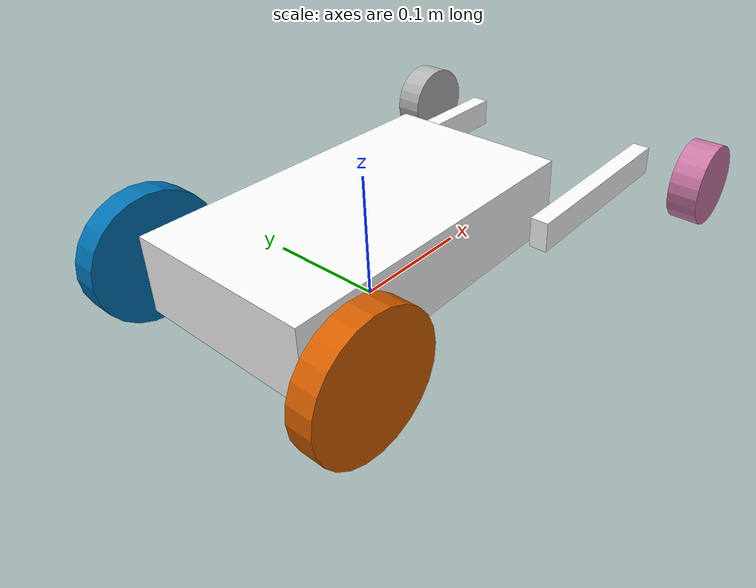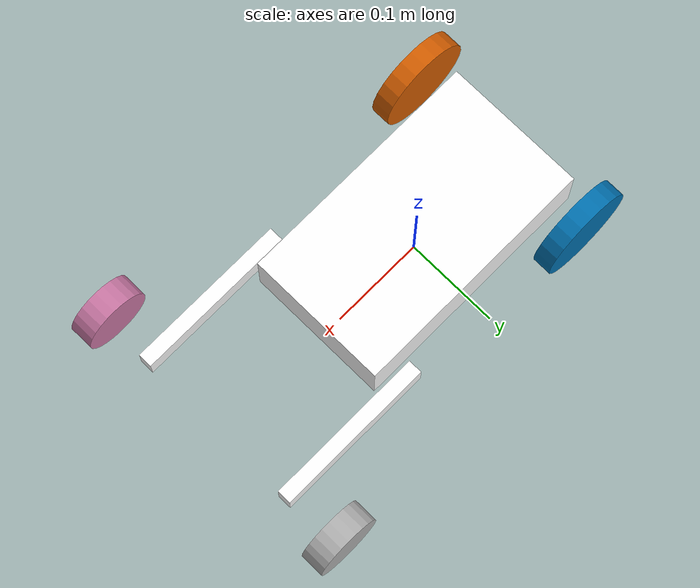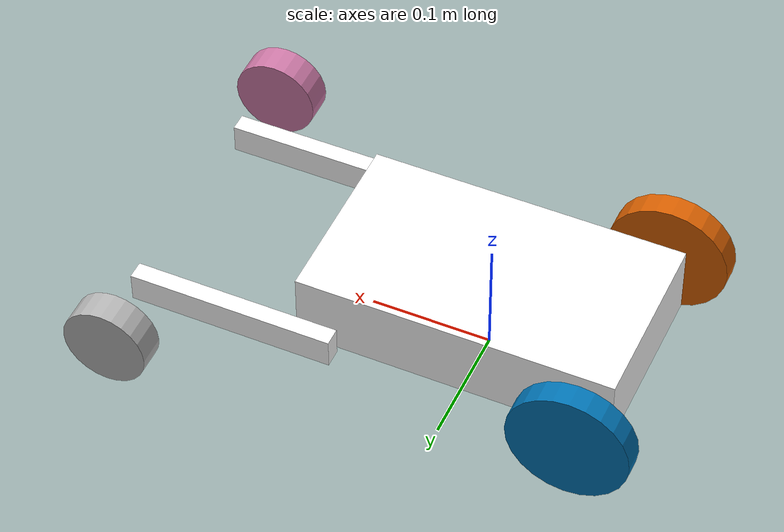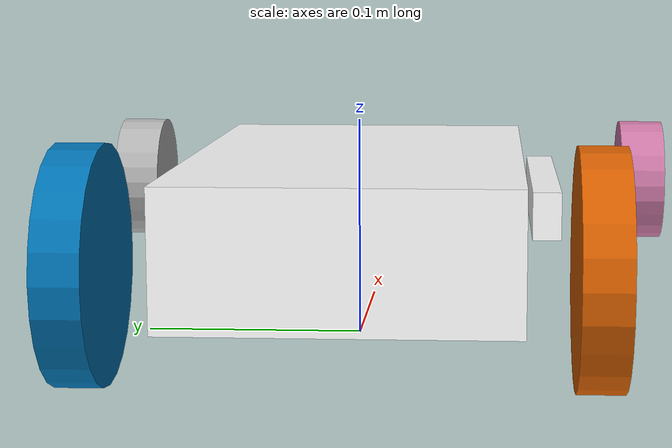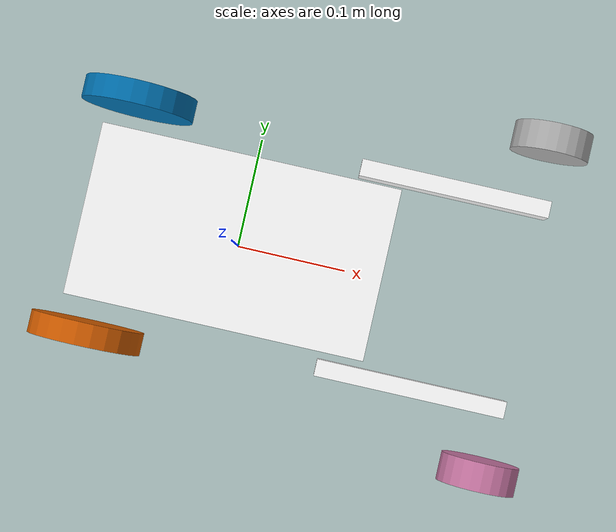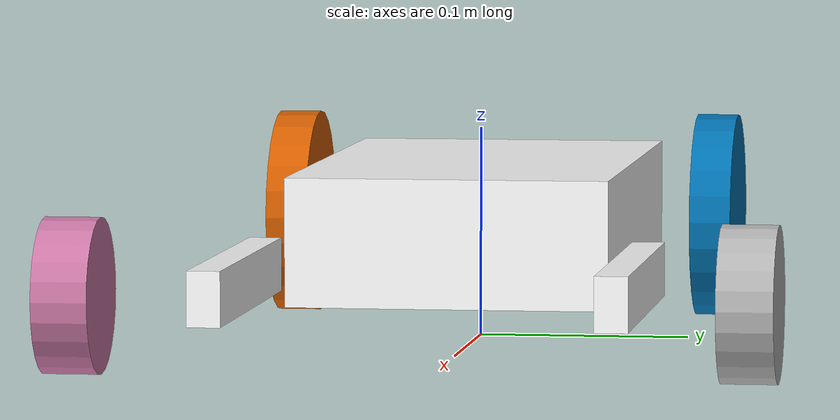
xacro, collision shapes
<?xml version="1.0"?>
<robot name="differential_wheeled_robot" xmlns:xacro="http://www.ros.org/wiki/xacro">

  <xacro:include filename="$(find shadow-bot)/urdf/wheel.urdf.xacro" />

  <material name="Black">
    <color rgba="0.0 0.0 0.0 1.0"/>
  </material>

  <material name="Red">
    <color rgba="0.8 0.0 0.0 1.0"/>
  </material>

  <material name="White">
    <color rgba="1.0 1.0 1.0 1.0"/>
  </material>

  <material name="Blue">
    <color rgba="0.0 0.0 0.8 1.0"/>
  </material>

  <property name="M_PI" value="3.1415926535897931" />
  <property name="M_PI_2" value="1.570796327" />
  <property name="DEG_TO_RAD" value="0.017453293" />

  <!-- body -->
  <property name="base_mass" value="2.5" />

  <!-- arm -->
  <property name="arm_mass" value="1.0" />

  <!-- wheels -->
  <property name="wheel_mass" value="0.2" />

  <property name="base_x_origin_to_wheel_origin" value="-0.110" />
  <property name="base_y_origin_to_wheel_origin" value="0.095" />
  <property name="base_z_origin_to_wheel_origin" value="-0.005" />

  <property name="arm_x_origin_to_wheel_origin" value="0.160" />
  <property name="arm_y_origin_to_wheel_origin" value="-0.045" />
  <property name="arm_z_origin_to_wheel_origin" value="0.0" />

  <!-- inertia -->
  <macro name="cylinder_inertia" params="m r h">
    <inertia  ixx="${m*(3*r*r+h*h)/12}" ixy = "0" ixz = "0"
              iyy="${m*(3*r*r+h*h)/12}" iyz = "0"
              izz="${m*r*r/2}" />
  </macro>

  <macro name="box_inertia" params="m x y z">
    <inertia  ixx="${m*(y*y+z*z)/12}" ixy = "0" ixz = "0"
              iyy="${m*(x*x+z*z)/12}" iyz = "0"
              izz="${m*(x*x+y*y)/12}" />
  </macro>

  <gazebo>
    <plugin name="gazebo_ros_control" filename="libgazebo_ros_control.so">
    </plugin>
  </gazebo>

 <link name="base_footprint">
    <visual>
        <origin xyz="0 0 0" rpy="0 0 0" />
        <geometry>
            <box size="0.001 0.001 0.001" />
        </geometry>
    </visual>
  </link>

  <gazebo reference="base_footprint">
    <turnGravityOff>false</turnGravityOff>
  </gazebo>

  <joint name="base_footprint_joint" type="fixed">
    <origin xyz="0 0 ${wheel_radius - base_z_origin_to_wheel_origin}" rpy="0 0 0" />
    <parent link="base_footprint"/>
    <child link="base_link" />
  </joint>

  <link name="base_link">
    <inertial>
      <mass value="${base_mass}" />
      <origin xyz="0 0 0" />
      <!--The 3x3 rotational inertia matrix. -->
        <box_inertia  m="${base_mass}" x="0.262" y="0.150" z="0.06" />

    </inertial>
    <visual>
      <origin xyz="0.003 0 0.0065" rpy="0 0 ${M_PI/2}" />
      <geometry>
        <mesh filename="package://shadow-bot/meshes/dae/chassis.dae"/>
      </geometry>
      <material name="White" />
    </visual>
    <collision>
      <origin xyz="0 0 0" rpy="0 0 0 " />
      <geometry>
          <box size="0.262 0.150 0.06" />
      </geometry>
    </collision>
  </link>
  <gazebo reference="base_link">
    <material>Gazebo/White</material>
    <turnGravityOff>false</turnGravityOff>
  </gazebo>

  <link name="left_arm">
    <inertial>
      <mass value="${arm_mass}" />
      <origin xyz="0.085 0 0" rpy="0 0 0" />
      <!--The 3x3 rotational inertia matrix. -->
        <box_inertia  m="${arm_mass}" x="0.170" y="0.015" z="0.025" />
    </inertial>

    <visual>
      <origin xyz="0.0625 0.02 0.0115" rpy="${-M_PI/5} 0 ${M_PI/2}" />
      <geometry>
        <mesh filename="package://shadow-bot/meshes/dae/left-arm.dae"/>
      </geometry>
      <material name="White" />
    </visual>
    <collision>
      <origin xyz="0.085 0 0" rpy="0 0 0 " />
      <geometry>
          <box size="0.170 0.015 0.025" />
      </geometry>
    </collision>
  </link>
  <gazebo reference="left_link">
    <material>Gazebo/White</material>
    <turnGravityOff>false</turnGravityOff>
  </gazebo>

  <joint name="left_arm_joint" type="revolute">
    <parent link="base_link"/>
    <child link="left_arm"/>
    <origin xyz="0.0930 0.09 -0.0135" rpy="0 0 0" />
    <axis xyz="0 1 0"/>
    <dynamics damping="0.0" friction="0.0"/>
    <limit effort="1000.0" lower="${-5*M_PI/12}" upper="${5*M_PI/12}" velocity="1000.0"/>
  </joint>

  <transmission name="left_arm_joint_trans">
    <type>transmission_interface/SimpleTransmission</type>
    <joint name="left_arm_joint">
      <hardwareInterface>hardware_interface/PositionJointInterface</hardwareInterface>
    </joint>
    <actuator name="left_arm_joint_motor">
      <hardwareInterface>hardware_interface/PositionJointInterface</hardwareInterface>
      <mechanicalReduction>10</mechanicalReduction>
    </actuator>
  </transmission>

  <link name="right_arm">
    <inertial>
      <mass value="${arm_mass}" />
      <origin xyz="0.085 0 0" rpy="0 0 0" />
      <!--The 3x3 rotational inertia matrix. -->
        <box_inertia  m="${arm_mass}" x="0.170" y="0.015" z="0.025" />
    </inertial>
    <visual>
      <origin xyz="0.0625 -0.02 0.0115" rpy="${-M_PI/5} 0 ${M_PI/2}" />
      <geometry>
        <mesh filename="package://shadow-bot/meshes/dae/right-arm.dae"/>
      </geometry>
      <material name="White" />
    </visual>
    <collision>
      <origin xyz="0.085 0 0" rpy="0 0 0 " />
      <geometry>
          <box size="0.170 0.015 0.025" />
      </geometry>
    </collision>
  </link>
  <gazebo reference="right_link">
    <material>Gazebo/White</material>
    <turnGravityOff>false</turnGravityOff>
  </gazebo>

  <joint name="right_arm_joint" type="revolute">
    <parent link="base_link"/>
    <child link="right_arm"/>
    <origin xyz="0.0930 -0.09 -0.0135" rpy="0 0 0" />
    <axis xyz="0 1 0"/>
    <dynamics damping="0.0" friction="0.0"/>
    <limit effort="1000.0" lower="${-5*M_PI/12}" upper="${5*M_PI/12}" velocity="1000.0"/>
  </joint>

  <transmission name="right_arm_joint_trans">
    <type>transmission_interface/SimpleTransmission</type>
    <joint name="right_arm_joint">
      <hardwareInterface>hardware_interface/PositionJointInterface</hardwareInterface>
    </joint>
    <actuator name="right_arm_joint_motor">
      <hardwareInterface>hardware_interface/PositionJointInterface</hardwareInterface>
      <mechanicalReduction>10</mechanicalReduction>
    </actuator>
  </transmission>

<!-- Wheel Definitions -->

  <wheel fb="front" lr="right" parent="base_link" translateX="${base_x_origin_to_wheel_origin}" translateY="${base_y_origin_to_wheel_origin}" translateZ="${base_z_origin_to_wheel_origin}" flipY="1"/>
  <wheel fb="front" lr="left" parent="base_link" translateX="${base_x_origin_to_wheel_origin}" translateY="-${base_y_origin_to_wheel_origin}" translateZ="${base_z_origin_to_wheel_origin}" flipY="-1"/>

  <arm_wheel fb="arm" lr="right" parent="right_arm" translateX="${arm_x_origin_to_wheel_origin}" translateY="${arm_y_origin_to_wheel_origin}" translateZ="${arm_z_origin_to_wheel_origin}" flipY="1"/>
  <arm_wheel fb="arm" lr="left" parent="left_arm" translateX="${arm_x_origin_to_wheel_origin}" translateY="${-1 * arm_y_origin_to_wheel_origin}" translateZ="${arm_z_origin_to_wheel_origin}" flipY="-1"/>

  <!-- Differential drive controller  -->
  <gazebo>
    <plugin name="differential_drive_controller" filename="libgazebo_ros_diff_drive.so">
      <rosDebugLevel>Debug</rosDebugLevel>
      <publishWheelTF>false</publishWheelTF>
      <robotNamespace>/</robotNamespace>
      <publishTf>1</publishTf>
      <publishWheelJointState>false</publishWheelJointState>
      <alwaysOn>true</alwaysOn>
      <updateRate>100.0</updateRate>
      <leftJoint>front_left_wheel_joint</leftJoint>
      <rightJoint>front_right_wheel_joint</rightJoint>
      <wheelSeparation>0.150</wheelSeparation>
      <wheelDiameter>${2*wheel_radius}</wheelDiameter>
      <broadcastTF>1</broadcastTF>
      <wheelTorque>40</wheelTorque>
      <wheelAcceleration>1.8</wheelAcceleration>
      <commandTopic>cmd_vel</commandTopic>
      <odometryFrame>odom</odometryFrame>
      <odometryTopic>odom</odometryTopic>
      <robotBaseFrame>base_footprint</robotBaseFrame>
    </plugin>
  </gazebo>
</robot>

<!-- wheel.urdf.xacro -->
<robot name="wheel" xmlns:xacro="http://www.ros.org/wiki/xacro">

  <!-- Wheels -->
  <property name="wheel_radius" value="0.050" />
  <property name="arm_wheel_radius" value="0.0350" />
  <property name="wheel_height" value="0.02" />
  <property name="arm_wheel_height" value="0.025" />
  <property name="wheel_mass" value="0.15" />
  <property name="arm_wheel_mass" value="0.005" />

  <property name="base_x_origin_to_wheel_origin" value="-0.110" />
  <property name="base_y_origin_to_wheel_origin" value="0.095" />
  <property name="base_z_origin_to_wheel_origin" value="-0.005" />

  <macro name="cylinder_inertia" params="m r h">
    <inertia  ixx="${m*(3*r*r+h*h)/12}" ixy = "0" ixz = "0"
              iyy="${m*(3*r*r+h*h)/12}" iyz = "0"
              izz="${m*r*r/2}" />
  </macro>

  <xacro:macro name="wheel" params="fb lr parent translateX translateY translateZ flipY"> <!--fb : front, back ; lr: left, right -->
    <link name="${fb}_${lr}_wheel">
      <visual>
        <origin xyz="0 ${flipY*0.01} 0" rpy="${flipY*M_PI/2} 0 ${flipY*M_PI/2}" />
        <geometry>
          <mesh filename="package://shadow-bot/meshes/dae/rearWheel.dae"/>
        </geometry>
      </visual>
      <collision>
        <origin xyz="0 ${flipY*0.01} 0" rpy="${flipY*M_PI/2} 0 0 " />
        <geometry>
          <cylinder length="${wheel_height}" radius="${wheel_radius}" />
        </geometry>
        <surface>
          <friction>
            <ode>
              <mu>1.0</mu>
              <mu2>0.25</mu2>
              <fdir1>1 0 0</fdir1>
              <slip1>0</slip1>
              <slip2>0</slip2>
            </ode>
            <torsional>
              <coefficient>0.0</coefficient>
              <patch_radius>0</patch_radius>
              <surface_radius>0</surface_radius>
              <use_patch_radius>1</use_patch_radius>
              <ode>
                <slip>0</slip>
              </ode>
            </torsional>
          </friction>
          <bounce>
            <restitution_coefficient>0</restitution_coefficient>
            <threshold>1e+06</threshold>
          </bounce>
          <contact>
            <collide_without_contact>0</collide_without_contact>
            <collide_without_contact_bitmask>0</collide_without_contact_bitmask>
            <collide_bitmask>0</collide_bitmask>
            <ode>
              <max_vel>0.1</max_vel>
              <soft_cfm>0.8</soft_cfm>
              <soft_erp>0.8</soft_erp>
              <kd>2500</kd>
              <kp>10</kp>
              <min_depth>0.001</min_depth>
            </ode>
            <bullet>
              <split_impulse>1</split_impulse>
              <split_impulse_penetration_threshold>-0.01</split_impulse_penetration_threshold>
              <soft_cfm>0</soft_cfm>
              <soft_erp>0.2</soft_erp>
              <kp>1e+13</kp>
              <kd>1</kd>
            </bullet>
          </contact>
        </surface>
      </collision>
      <inertial>
        <mass value="${wheel_mass}" />
        <origin xyz="0 0 0" rpy="${flipY*M_PI/2} 0 0 " />
        <cylinder_inertia  m="${wheel_mass}" r="${wheel_radius}" h="${wheel_height}" />
      </inertial>
    </link>

    <gazebo reference="${fb}_${lr}_wheel">
      <turnGravityOff>false</turnGravityOff>
    </gazebo>

    <joint name="${fb}_${lr}_wheel_joint" type="continuous">
      <parent link="${parent}"/>
      <child link="${fb}_${lr}_wheel"/>
      <origin xyz="${translateX} ${translateY} ${translateZ}" rpy="0 0 0" />
      <axis xyz="0 1 0" rpy="0  0" />
      <limit effort="100" velocity="100"/>
      <joint_properties damping="0.5" friction="100.0"/>
    </joint>

    <!-- Transmission is important to link the joints and the controller -->
    <transmission name="${fb}_${lr}_wheel_joint_trans">
      <type>transmission_interface/SimpleTransmission</type>
      <joint name="${fb}_${lr}_wheel_joint">
        <hardwareInterface>hardware_interface/EffortJointInterface</hardwareInterface>
      </joint>
      <actuator name="${fb}_${lr}_wheel_joint_motor">
        <hardwareInterface>hardware_interface/EffortJointInterface</hardwareInterface>
        <mechanicalReduction>1</mechanicalReduction>
      </actuator>
    </transmission>

  </xacro:macro>

    <xacro:macro name="arm_wheel" params="fb lr parent translateX translateY translateZ flipY"> <!--fb : front, back ; lr: left, right -->
    <link name="${fb}_${lr}_wheel">
      <visual>
        <origin xyz="0 ${-flipY*0.015} 0" rpy="${flipY*M_PI/2} 0  ${flipY*M_PI/2}" />
        <geometry>
          <mesh filename="package://shadow-bot/meshes/dae/frontWheel.dae"/>
        </geometry>
      </visual>
      <collision>
        <origin xyz="0 ${-flipY*0.015} 0" rpy="${flipY*M_PI/2} 0 0 " />
        <geometry>
          <cylinder length="${arm_wheel_height}" radius="${arm_wheel_radius}" />
        </geometry>
        <surface>
          <friction>
            <ode>
              <mu>1.0</mu>
              <mu2>0.25</mu2>
              <fdir1>1 0 0</fdir1>
              <slip1>0</slip1>
              <slip2>0</slip2>
            </ode>
            <torsional>
              <coefficient>0.0</coefficient>
              <patch_radius>0</patch_radius>
              <surface_radius>0</surface_radius>
              <use_patch_radius>1</use_patch_radius>
              <ode>
                <slip>0</slip>
              </ode>
            </torsional>
          </friction>
          <bounce>
            <restitution_coefficient>1</restitution_coefficient>
            <threshold>1e+06</threshold>
          </bounce>
          <contact>
            <collide_without_contact>0</collide_without_contact>
            <collide_without_contact_bitmask>1</collide_without_contact_bitmask>
            <collide_bitmask>1</collide_bitmask>
            <ode>
              <soft_cfm>0</soft_cfm>
              <soft_erp>0.2</soft_erp>
              <kp>1e+13</kp>
              <kd>1</kd>
              <max_vel>0.01</max_vel>
              <min_depth>0</min_depth>
            </ode>
            <bullet>
              <split_impulse>1</split_impulse>
              <split_impulse_penetration_threshold>-0.01</split_impulse_penetration_threshold>
              <soft_cfm>0</soft_cfm>
              <soft_erp>0.2</soft_erp>
              <kp>1e+13</kp>
              <kd>1</kd>
            </bullet>
          </contact>
        </surface>
      </collision>
      <inertial>
        <mass value="${arm_wheel_mass}" />
        <origin xyz="0 0 0" rpy="${flipY*M_PI/2} 0 0 " />
        <cylinder_inertia  m="${arm_wheel_mass}" r="${arm_wheel_radius}" h="${arm_wheel_height}" />
      </inertial>
    </link>

    <gazebo reference="${fb}_${lr}_wheel">
      <turnGravityOff>false</turnGravityOff>
    </gazebo>

    <joint name="${fb}_${lr}_wheel_joint" type="continuous">
      <parent link="${parent}"/>
      <child link="${fb}_${lr}_wheel"/>
      <origin xyz="${translateX} ${translateY} ${translateZ}" rpy="0 0 0" />
      <axis xyz="0 1 0" rpy="0  0" />
      <limit effort="10000" velocity="10000"/>
      <joint_properties damping="0.0" friction="0.0"/>
    </joint>

    <!-- Transmission is important to link the joints and the controller -->
    <transmission name="${fb}_${lr}_wheel_joint_trans">
      <type>transmission_interface/SimpleTransmission</type>
      <joint name="${fb}_${lr}_wheel_joint">
        <hardwareInterface>hardware_interface/EffortJointInterface</hardwareInterface>
      </joint>
      <actuator name="${fb}_${lr}_wheel_joint_motor">
        <hardwareInterface>hardware_interface/EffortJointInterface</hardwareInterface>
        <mechanicalReduction>1</mechanicalReduction>
      </actuator>
    </transmission>

  </xacro:macro>
</robot>
